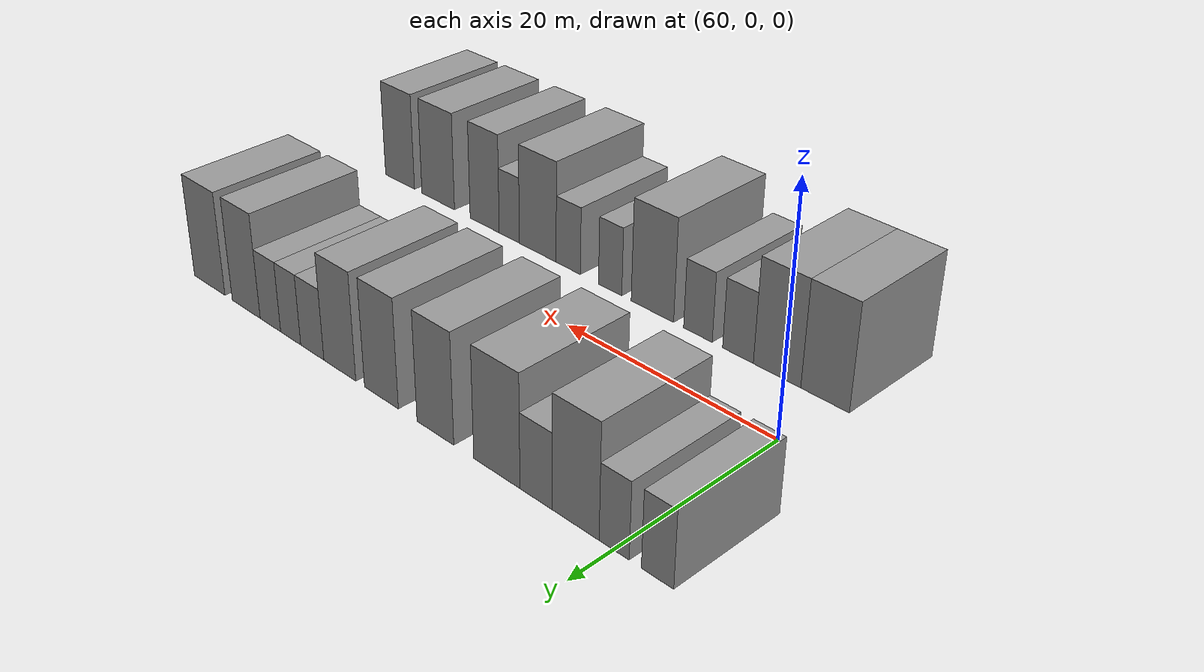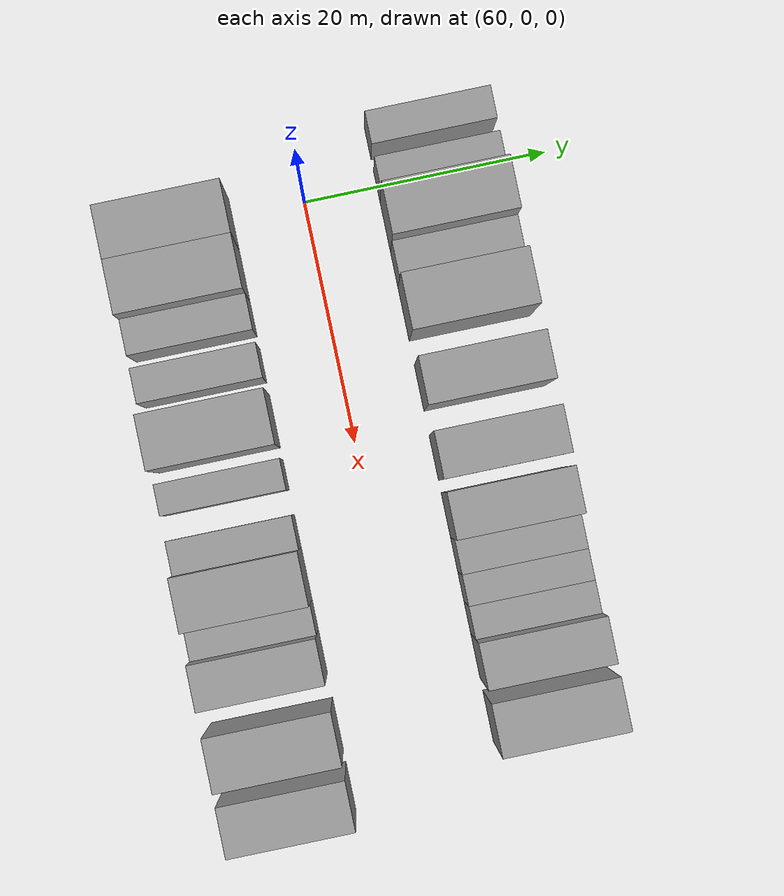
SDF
<sdf version="1.6">
 <world name="default">
  <model name="building_13">
   <static>1</static>
   <pose>56.4099 11.0000 0 0.000000 0.000000 1.570796</pose>
   <link name="link">
    <pose>0 0 3.00 0 0 0</pose>
    <collision name="collision"><geometry><box><size>10.0000 2.6151 6.0000</size></box></geometry></collision>
    <visual name="visual">
     <cast_shadows>0</cast_shadows>
     <geometry><box><size>10.0000 2.6151 6.0000</size></box></geometry>
     <material>
      <script>
       <uri>model://grey_wall/materials/scripts</uri>
       <uri>model://grey_wall/materials/textures</uri>
       <name>vrc/grey_wall</name>
      </script>
     </material>
    </visual>
   </link>
  </model>
  <model name="building_14">
   <static>1</static>
   <pose>59.9889 11.0000 0 0.000000 0.000000 1.570796</pose>
   <link name="link">
    <pose>0 0 3.00 0 0 0</pose>
    <collision name="collision"><geometry><box><size>10.0000 2.5429 6.0000</size></box></geometry></collision>
    <visual name="visual">
     <cast_shadows>0</cast_shadows>
     <geometry><box><size>10.0000 2.5429 6.0000</size></box></geometry>
     <material>
      <script>
       <uri>model://grey_wall/materials/scripts</uri>
       <uri>model://grey_wall/materials/textures</uri>
       <name>vrc/grey_wall</name>
      </script>
     </material>
    </visual>
   </link>
  </model>
  <model name="building_15">
   <static>1</static>
   <pose>63.3386 11.0000 0 0.000000 0.000000 1.570796</pose>
   <link name="link">
    <pose>0 0 4.50 0 0 0</pose>
    <collision name="collision"><geometry><box><size>10.0000 4.1566 9.0000</size></box></geometry></collision>
    <visual name="visual">
     <cast_shadows>0</cast_shadows>
     <geometry><box><size>10.0000 4.1566 9.0000</size></box></geometry>
     <material>
      <script>
       <uri>model://grey_wall/materials/scripts</uri>
       <uri>model://grey_wall/materials/textures</uri>
       <name>vrc/grey_wall</name>
      </script>
     </material>
    </visual>
   </link>
  </model>
  <model name="building_16">
   <static>1</static>
   <pose>66.8907 11.0000 0 0.000000 0.000000 1.570796</pose>
   <link name="link">
    <pose>0 0 3.00 0 0 0</pose>
    <collision name="collision"><geometry><box><size>10.0000 2.9475 6.0000</size></box></geometry></collision>
    <visual name="visual">
     <cast_shadows>0</cast_shadows>
     <geometry><box><size>10.0000 2.9475 6.0000</size></box></geometry>
     <material>
      <script>
       <uri>model://grey_wall/materials/scripts</uri>
       <uri>model://grey_wall/materials/textures</uri>
       <name>vrc/grey_wall</name>
      </script>
     </material>
    </visual>
   </link>
  </model>
  <model name="building_17">
   <static>1</static>
   <pose>70.5925 11.0000 0 0.000000 0.000000 1.570796</pose>
   <link name="link">
    <pose>0 0 4.50 0 0 0</pose>
    <collision name="collision"><geometry><box><size>10.0000 4.4562 9.0000</size></box></geometry></collision>
    <visual name="visual">
     <cast_shadows>0</cast_shadows>
     <geometry><box><size>10.0000 4.4562 9.0000</size></box></geometry>
     <material>
      <script>
       <uri>model://grey_wall/materials/scripts</uri>
       <uri>model://grey_wall/materials/textures</uri>
       <name>vrc/grey_wall</name>
      </script>
     </material>
    </visual>
   </link>
  </model>
  <model name="building_18">
   <static>1</static>
   <pose>76.7253 11.0000 0 0.000000 0.000000 1.570796</pose>
   <link name="link">
    <pose>0 0 4.50 0 0 0</pose>
    <collision name="collision"><geometry><box><size>10.0000 3.8095 9.0000</size></box></geometry></collision>
    <visual name="visual">
     <cast_shadows>0</cast_shadows>
     <geometry><box><size>10.0000 3.8095 9.0000</size></box></geometry>
     <material>
      <script>
       <uri>model://grey_wall/materials/scripts</uri>
       <uri>model://grey_wall/materials/textures</uri>
       <name>vrc/grey_wall</name>
      </script>
     </material>
    </visual>
   </link>
  </model>
  <model name="building_19">
   <static>1</static>
   <pose>82.5011 11.0000 0 0.000000 0.000000 1.570796</pose>
   <link name="link">
    <pose>0 0 4.50 0 0 0</pose>
    <collision name="collision"><geometry><box><size>10.0000 3.7421 9.0000</size></box></geometry></collision>
    <visual name="visual">
     <cast_shadows>0</cast_shadows>
     <geometry><box><size>10.0000 3.7421 9.0000</size></box></geometry>
     <material>
      <script>
       <uri>model://grey_wall/materials/scripts</uri>
       <uri>model://grey_wall/materials/textures</uri>
       <name>vrc/grey_wall</name>
      </script>
     </material>
    </visual>
   </link>
  </model>
  <model name="building_20">
   <static>1</static>
   <pose>87.2350 11.0000 0 0.000000 0.000000 1.570796</pose>
   <link name="link">
    <pose>0 0 4.50 0 0 0</pose>
    <collision name="collision"><geometry><box><size>10.0000 3.7256 9.0000</size></box></geometry></collision>
    <visual name="visual">
     <cast_shadows>0</cast_shadows>
     <geometry><box><size>10.0000 3.7256 9.0000</size></box></geometry>
     <material>
      <script>
       <uri>model://grey_wall/materials/scripts</uri>
       <uri>model://grey_wall/materials/textures</uri>
       <name>vrc/grey_wall</name>
      </script>
     </material>
    </visual>
   </link>
  </model>
  <model name="building_21">
   <static>1</static>
   <pose>90.4984 11.0000 0 0.000000 0.000000 1.570796</pose>
   <link name="link">
    <pose>0 0 3.00 0 0 0</pose>
    <collision name="collision"><geometry><box><size>10.0000 2.8013 6.0000</size></box></geometry></collision>
    <visual name="visual">
     <cast_shadows>0</cast_shadows>
     <geometry><box><size>10.0000 2.8013 6.0000</size></box></geometry>
     <material>
      <script>
       <uri>model://grey_wall/materials/scripts</uri>
       <uri>model://grey_wall/materials/textures</uri>
       <name>vrc/grey_wall</name>
      </script>
     </material>
    </visual>
   </link>
  </model>
  <model name="building_22">
   <static>1</static>
   <pose>93.1479 11.0000 0 0.000000 0.000000 1.570796</pose>
   <link name="link">
    <pose>0 0 3.00 0 0 0</pose>
    <collision name="collision"><geometry><box><size>10.0000 2.4976 6.0000</size></box></geometry></collision>
    <visual name="visual">
     <cast_shadows>0</cast_shadows>
     <geometry><box><size>10.0000 2.4976 6.0000</size></box></geometry>
     <material>
      <script>
       <uri>model://grey_wall/materials/scripts</uri>
       <uri>model://grey_wall/materials/textures</uri>
       <name>vrc/grey_wall</name>
      </script>
     </material>
    </visual>
   </link>
  </model>
  <model name="building_23">
   <static>1</static>
   <pose>95.7047 11.0000 0 0.000000 0.000000 1.570796</pose>
   <link name="link">
    <pose>0 0 3.00 0 0 0</pose>
    <collision name="collision"><geometry><box><size>10.0000 2.6161 6.0000</size></box></geometry></collision>
    <visual name="visual">
     <cast_shadows>0</cast_shadows>
     <geometry><box><size>10.0000 2.6161 6.0000</size></box></geometry>
     <material>
      <script>
       <uri>model://grey_wall/materials/scripts</uri>
       <uri>model://grey_wall/materials/textures</uri>
       <name>vrc/grey_wall</name>
      </script>
     </material>
    </visual>
   </link>
  </model>
  <model name="building_24">
   <static>1</static>
   <pose>98.8529 11.0000 0 0.000000 0.000000 1.570796</pose>
   <link name="link">
    <pose>0 0 4.50 0 0 0</pose>
    <collision name="collision"><geometry><box><size>10.0000 3.6804 9.0000</size></box></geometry></collision>
    <visual name="visual">
     <cast_shadows>0</cast_shadows>
     <geometry><box><size>10.0000 3.6804 9.0000</size></box></geometry>
     <material>
      <script>
       <uri>model://grey_wall/materials/scripts</uri>
       <uri>model://grey_wall/materials/textures</uri>
       <name>vrc/grey_wall</name>
      </script>
     </material>
    </visual>
   </link>
  </model>
  <model name="building_25">
   <static>1</static>
   <pose>103.8006 11.0000 0 0.000000 0.000000 1.570796</pose>
   <link name="link">
    <pose>0 0 4.50 0 0 0</pose>
    <collision name="collision"><geometry><box><size>10.0000 4.2151 9.0000</size></box></geometry></collision>
    <visual name="visual">
     <cast_shadows>0</cast_shadows>
     <geometry><box><size>10.0000 4.2151 9.0000</size></box></geometry>
     <material>
      <script>
       <uri>model://grey_wall/materials/scripts</uri>
       <uri>model://grey_wall/materials/textures</uri>
       <name>vrc/grey_wall</name>
      </script>
     </material>
    </visual>
   </link>
  </model>
  <model name="building_64">
   <static>1</static>
   <pose>60.6399 -11.0000 0 0.000000 0.000000 1.570796</pose>
   <link name="link">
    <pose>0 0 4.50 0 0 0</pose>
    <collision name="collision"><geometry><box><size>10.0000 4.2185 9.0000</size></box></geometry></collision>
    <visual name="visual">
     <cast_shadows>0</cast_shadows>
     <geometry><box><size>10.0000 4.2185 9.0000</size></box></geometry>
     <material>
      <script>
       <uri>model://grey_wall/materials/scripts</uri>
       <uri>model://grey_wall/materials/textures</uri>
       <name>vrc/grey_wall</name>
      </script>
     </material>
    </visual>
   </link>
  </model>
  <model name="building_65">
   <static>1</static>
   <pose>64.9015 -11.0000 0 0.000000 0.000000 1.570796</pose>
   <link name="link">
    <pose>0 0 4.50 0 0 0</pose>
    <collision name="collision"><geometry><box><size>10.0000 4.3046 9.0000</size></box></geometry></collision>
    <visual name="visual">
     <cast_shadows>0</cast_shadows>
     <geometry><box><size>10.0000 4.3046 9.0000</size></box></geometry>
     <material>
      <script>
       <uri>model://grey_wall/materials/scripts</uri>
       <uri>model://grey_wall/materials/textures</uri>
       <name>vrc/grey_wall</name>
      </script>
     </material>
    </visual>
   </link>
  </model>
  <model name="building_66">
   <static>1</static>
   <pose>68.5039 -11.0000 0 0.000000 0.000000 1.570796</pose>
   <link name="link">
    <pose>0 0 3.00 0 0 0</pose>
    <collision name="collision"><geometry><box><size>10.0000 2.9003 6.0000</size></box></geometry></collision>
    <visual name="visual">
     <cast_shadows>0</cast_shadows>
     <geometry><box><size>10.0000 2.9003 6.0000</size></box></geometry>
     <material>
      <script>
       <uri>model://grey_wall/materials/scripts</uri>
       <uri>model://grey_wall/materials/textures</uri>
       <name>vrc/grey_wall</name>
      </script>
     </material>
    </visual>
   </link>
  </model>
  <model name="building_67">
   <static>1</static>
   <pose>72.3628 -11.0000 0 0.000000 0.000000 1.570796</pose>
   <link name="link">
    <pose>0 0 3.00 0 0 0</pose>
    <collision name="collision"><geometry><box><size>10.0000 2.8173 6.0000</size></box></geometry></collision>
    <visual name="visual">
     <cast_shadows>0</cast_shadows>
     <geometry><box><size>10.0000 2.8173 6.0000</size></box></geometry>
     <material>
      <script>
       <uri>model://grey_wall/materials/scripts</uri>
       <uri>model://grey_wall/materials/textures</uri>
       <name>vrc/grey_wall</name>
      </script>
     </material>
    </visual>
   </link>
  </model>
  <model name="building_68">
   <static>1</static>
   <pose>76.9639 -11.0000 0 0.000000 0.000000 1.570796</pose>
   <link name="link">
    <pose>0 0 4.50 0 0 0</pose>
    <collision name="collision"><geometry><box><size>10.0000 4.3849 9.0000</size></box></geometry></collision>
    <visual name="visual">
     <cast_shadows>0</cast_shadows>
     <geometry><box><size>10.0000 4.3849 9.0000</size></box></geometry>
     <material>
      <script>
       <uri>model://grey_wall/materials/scripts</uri>
       <uri>model://grey_wall/materials/textures</uri>
       <name>vrc/grey_wall</name>
      </script>
     </material>
    </visual>
   </link>
  </model>
  <model name="building_69">
   <static>1</static>
   <pose>81.4125 -11.0000 0 0.000000 0.000000 1.570796</pose>
   <link name="link">
    <pose>0 0 3.00 0 0 0</pose>
    <collision name="collision"><geometry><box><size>10.0000 2.5124 6.0000</size></box></geometry></collision>
    <visual name="visual">
     <cast_shadows>0</cast_shadows>
     <geometry><box><size>10.0000 2.5124 6.0000</size></box></geometry>
     <material>
      <script>
       <uri>model://grey_wall/materials/scripts</uri>
       <uri>model://grey_wall/materials/textures</uri>
       <name>vrc/grey_wall</name>
      </script>
     </material>
    </visual>
   </link>
  </model>
  <model name="building_70">
   <static>1</static>
   <pose>86.0426 -11.0000 0 0.000000 0.000000 1.570796</pose>
   <link name="link">
    <pose>0 0 3.00 0 0 0</pose>
    <collision name="collision"><geometry><box><size>10.0000 2.7478 6.0000</size></box></geometry></collision>
    <visual name="visual">
     <cast_shadows>0</cast_shadows>
     <geometry><box><size>10.0000 2.7478 6.0000</size></box></geometry>
     <material>
      <script>
       <uri>model://grey_wall/materials/scripts</uri>
       <uri>model://grey_wall/materials/textures</uri>
       <name>vrc/grey_wall</name>
      </script>
     </material>
    </visual>
   </link>
  </model>
  <model name="building_71">
   <static>1</static>
   <pose>89.5666 -11.0000 0 0.000000 0.000000 1.570796</pose>
   <link name="link">
    <pose>0 0 4.50 0 0 0</pose>
    <collision name="collision"><geometry><box><size>10.0000 4.3002 9.0000</size></box></geometry></collision>
    <visual name="visual">
     <cast_shadows>0</cast_shadows>
     <geometry><box><size>10.0000 4.3002 9.0000</size></box></geometry>
     <material>
      <script>
       <uri>model://grey_wall/materials/scripts</uri>
       <uri>model://grey_wall/materials/textures</uri>
       <name>vrc/grey_wall</name>
      </script>
     </material>
    </visual>
   </link>
  </model>
  <model name="building_72">
   <static>1</static>
   <pose>92.9340 -11.0000 0 0.000000 0.000000 1.570796</pose>
   <link name="link">
    <pose>0 0 3.00 0 0 0</pose>
    <collision name="collision"><geometry><box><size>10.0000 2.4345 6.0000</size></box></geometry></collision>
    <visual name="visual">
     <cast_shadows>0</cast_shadows>
     <geometry><box><size>10.0000 2.4345 6.0000</size></box></geometry>
     <material>
      <script>
       <uri>model://grey_wall/materials/scripts</uri>
       <uri>model://grey_wall/materials/textures</uri>
       <name>vrc/grey_wall</name>
      </script>
     </material>
    </visual>
   </link>
  </model>
  <model name="building_73">
   <static>1</static>
   <pose>95.9624 -11.0000 0 0.000000 0.000000 1.570796</pose>
   <link name="link">
    <pose>0 0 4.50 0 0 0</pose>
    <collision name="collision"><geometry><box><size>10.0000 3.6225 9.0000</size></box></geometry></collision>
    <visual name="visual">
     <cast_shadows>0</cast_shadows>
     <geometry><box><size>10.0000 3.6225 9.0000</size></box></geometry>
     <material>
      <script>
       <uri>model://grey_wall/materials/scripts</uri>
       <uri>model://grey_wall/materials/textures</uri>
       <name>vrc/grey_wall</name>
      </script>
     </material>
    </visual>
   </link>
  </model>
  <model name="building_74">
   <static>1</static>
   <pose>101.9149 -11.0000 0 0.000000 0.000000 1.570796</pose>
   <link name="link">
    <pose>0 0 4.50 0 0 0</pose>
    <collision name="collision"><geometry><box><size>10.0000 4.2823 9.0000</size></box></geometry></collision>
    <visual name="visual">
     <cast_shadows>0</cast_shadows>
     <geometry><box><size>10.0000 4.2823 9.0000</size></box></geometry>
     <material>
      <script>
       <uri>model://grey_wall/materials/scripts</uri>
       <uri>model://grey_wall/materials/textures</uri>
       <name>vrc/grey_wall</name>
      </script>
     </material>
    </visual>
   </link>
  </model>
  <model name="building_75">
   <static>1</static>
   <pose>107.0439 -11.0000 0 0.000000 0.000000 1.570796</pose>
   <link name="link">
    <pose>0 0 4.50 0 0 0</pose>
    <collision name="collision"><geometry><box><size>10.0000 3.9757 9.0000</size></box></geometry></collision>
    <visual name="visual">
     <cast_shadows>0</cast_shadows>
     <geometry><box><size>10.0000 3.9757 9.0000</size></box></geometry>
     <material>
      <script>
       <uri>model://grey_wall/materials/scripts</uri>
       <uri>model://grey_wall/materials/textures</uri>
       <name>vrc/grey_wall</name>
      </script>
     </material>
    </visual>
   </link>
  </model>
 </world>
</sdf>
